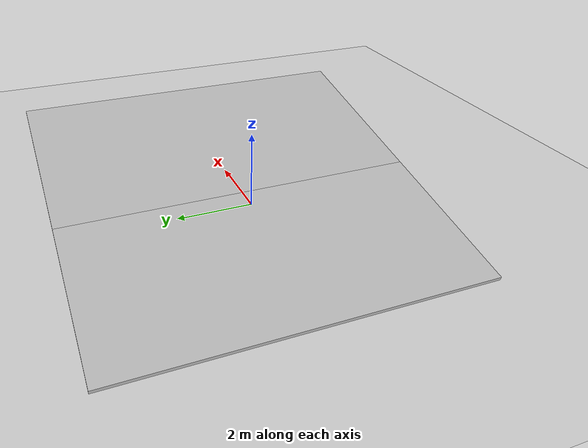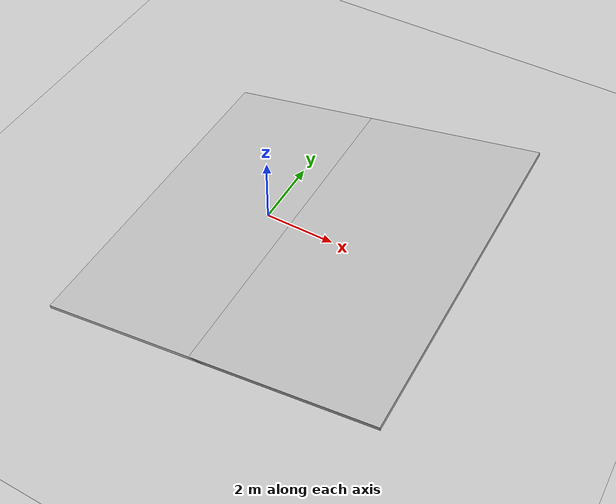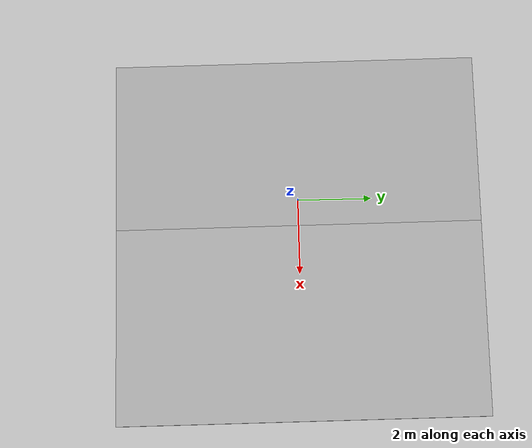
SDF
<?xml version="1.0" ?>
<sdf version="1.4">
  <world name="default">
    <scene>
      <shadows>0</shadows>
    </scene>
    <include>
      <uri>model://ground_plane</uri>
    </include>
    <include>
      <uri>model://sun</uri>
    </include>
    <model name="box">
      <static>true</static>

      <pose>1 0 0.0 0 -0.2 0</pose>
      <link name="link">
        <collision name="collision">
          <geometry>
            <box>
              <size>10 10 0.1</size>
            </box>
          </geometry>
        </collision>
        <visual name="visual">
          <geometry>
            <box>
              <size>10 10 0.1</size>
            </box>
          </geometry>
        </visual>
      </link>
    </model>
  </world>
</sdf>
